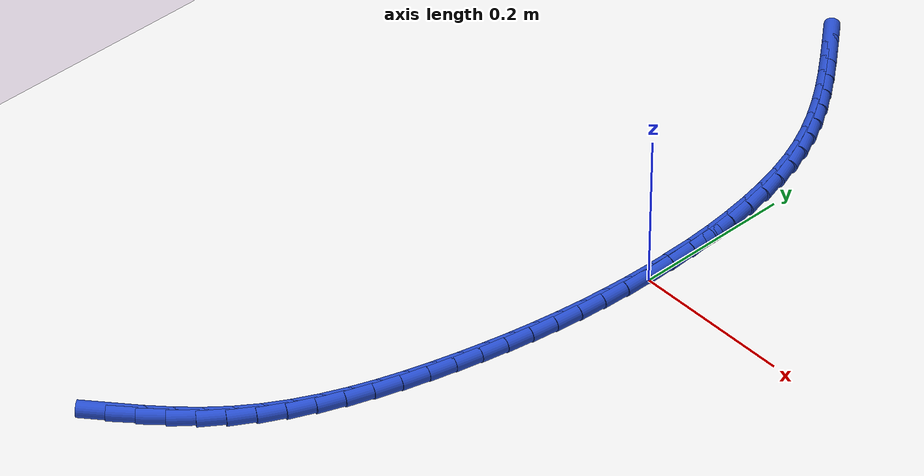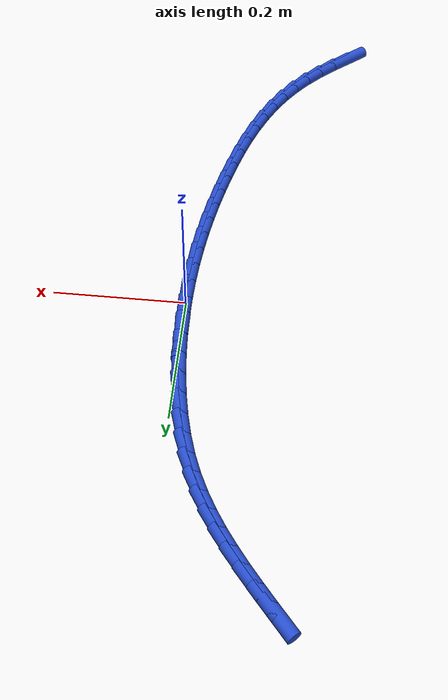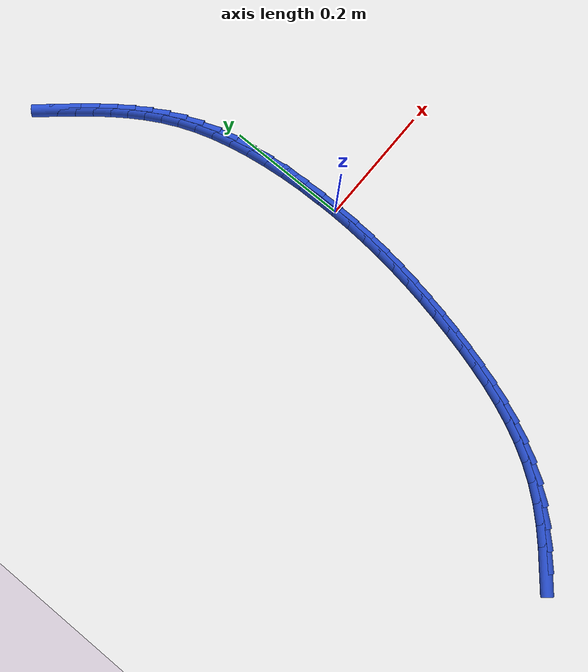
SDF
<sdf version="1.6">
 <world name="default">
  <model name="ground_plane">
   <static>1</static>
   <link name="link">
    <collision name="collision">
     <geometry><plane><normal>0 0 1</normal><size>100 100</size></plane></geometry>
     <surface><friction><ode><mu>100</mu><mu2>50</mu2></ode></friction></surface>
    </collision>
    <visual name="visual">
     <cast_shadows>0</cast_shadows>
     <geometry><plane><normal>0 0 1</normal><size>100 100</size></plane></geometry>
     <material>
      <script><uri>file://media/materials/scripts/gazebo.material</uri><name>Gazebo/WhiteGlow</name></script>
     </material>
    </visual>
   </link>
  </model>
  <model name="line">
   <link name="link_0">
    <pose>2.168404344971009e-17 -4.85722573273506e-17 0.01 0 1.57 1.5698805837654344</pose>
    <collision name="collision">
     <geometry><cylinder><radius>0.01</radius><length>0.08</length></cylinder></geometry>
    </collision>
    <visual name="visual">
     <material>
      <script><name>Gazebo/Blue</name><uri>file://media/materials/scripts/gazebo.material</uri></script>
     </material>
     <geometry><cylinder><radius>0.01</radius><length>0.08</length></cylinder></geometry>
    </visual>
   </link>
   <link name="link_1">
    <pose>3.1103723999863517e-05 0.03396554961901245 0.01 0 1.57 -1.5394128594266292</pose>
    <collision name="collision">
     <geometry><cylinder><radius>0.01</radius><length>0.08</length></cylinder></geometry>
    </collision>
    <visual name="visual">
     <material>
      <script><name>Gazebo/Blue</name><uri>file://media/materials/scripts/gazebo.material</uri></script>
     </material>
     <geometry><cylinder><radius>0.01</radius><length>0.08</length></cylinder></geometry>
    </visual>
   </link>
   <link name="link_2">
    <pose>-0.001041612647061923 0.06813526562558116 0.01 0 1.57 -1.50493062476425</pose>
    <collision name="collision">
     <geometry><cylinder><radius>0.01</radius><length>0.08</length></cylinder></geometry>
    </collision>
    <visual name="visual">
     <material>
      <script><name>Gazebo/Blue</name><uri>file://media/materials/scripts/gazebo.material</uri></script>
     </material>
     <geometry><cylinder><radius>0.01</radius><length>0.08</length></cylinder></geometry>
    </visual>
   </link>
   <link name="link_3">
    <pose>-0.003288826881137124 0.10220403791664233 0.01 0 1.57 -1.4674196419176873</pose>
    <collision name="collision">
     <geometry><cylinder><radius>0.01</radius><length>0.08</length></cylinder></geometry>
    </collision>
    <visual name="visual">
     <material>
      <script><name>Gazebo/Blue</name><uri>file://media/materials/scripts/gazebo.material</uri></script>
     </material>
     <geometry><cylinder><radius>0.01</radius><length>0.08</length></cylinder></geometry>
    </visual>
   </link>
   <link name="link_4">
    <pose>-0.006781216746177534 0.13586675638913231 0.01 0 1.57 -1.4259003814461089</pose>
    <collision name="collision">
     <geometry><cylinder><radius>0.01</radius><length>0.08</length></cylinder></geometry>
    </collision>
    <visual name="visual">
     <material>
      <script><name>Gazebo/Blue</name><uri>file://media/materials/scripts/gazebo.material</uri></script>
     </material>
     <geometry><cylinder><radius>0.01</radius><length>0.08</length></cylinder></geometry>
    </visual>
   </link>
   <link name="link_5">
    <pose>-0.011589460010134932 0.1688183109399874 0.01 0 1.57 -1.3791968167658442</pose>
    <collision name="collision">
     <geometry><cylinder><radius>0.01</radius><length>0.08</length></cylinder></geometry>
    </collision>
    <visual name="visual">
     <material>
      <script><name>Gazebo/Blue</name><uri>file://media/materials/scripts/gazebo.material</uri></script>
     </material>
     <geometry><cylinder><radius>0.01</radius><length>0.08</length></cylinder></geometry>
    </visual>
   </link>
   <link name="link_6">
    <pose>-0.017784234440961125 0.20075359146614397 0.01 0 1.57 -1.3258634944821102</pose>
    <collision name="collision">
     <geometry><cylinder><radius>0.01</radius><length>0.08</length></cylinder></geometry>
    </collision>
    <visual name="visual">
     <material>
      <script><name>Gazebo/Blue</name><uri>file://media/materials/scripts/gazebo.material</uri></script>
     </material>
     <geometry><cylinder><radius>0.01</radius><length>0.08</length></cylinder></geometry>
    </visual>
   </link>
   <link name="link_7">
    <pose>-0.025436217806607875 0.2313674878645382 0.01 0 1.57 -1.264103817456565</pose>
    <collision name="collision">
     <geometry><cylinder><radius>0.01</radius><length>0.08</length></cylinder></geometry>
    </collision>
    <visual name="visual">
     <material>
      <script><name>Gazebo/Blue</name><uri>file://media/materials/scripts/gazebo.material</uri></script>
     </material>
     <geometry><cylinder><radius>0.01</radius><length>0.08</length></cylinder></geometry>
    </visual>
   </link>
   <link name="link_8">
    <pose>-0.03461608350601679 0.2603549068060391 0.01 0 1.57 -1.1942190932518901</pose>
    <collision name="collision">
     <geometry><cylinder><radius>0.01</radius><length>0.08</length></cylinder></geometry>
    </collision>
    <visual name="visual">
     <material>
      <script><name>Gazebo/Blue</name><uri>file://media/materials/scripts/gazebo.material</uri></script>
     </material>
     <geometry><cylinder><radius>0.01</radius><length>0.08</length></cylinder></geometry>
    </visual>
   </link>
   <link name="link_9">
    <pose>-0.04536305266513509 0.28753150961506563 0.01 0 1.57 -1.1244701792396612</pose>
    <collision name="collision">
     <geometry><cylinder><radius>0.01</radius><length>0.08</length></cylinder></geometry>
    </collision>
    <visual name="visual">
     <material>
      <script><name>Gazebo/Blue</name><uri>file://media/materials/scripts/gazebo.material</uri></script>
     </material>
     <geometry><cylinder><radius>0.01</radius><length>0.08</length></cylinder></geometry>
    </visual>
   </link>
   <link name="link_10">
    <pose>-0.057609493409606825 0.31312319814251927 0.01 0 1.57 -1.059163996771727</pose>
    <collision name="collision">
     <geometry><cylinder><radius>0.01</radius><length>0.08</length></cylinder></geometry>
    </collision>
    <visual name="visual">
     <material>
      <script><name>Gazebo/Blue</name><uri>file://media/materials/scripts/gazebo.material</uri></script>
     </material>
     <geometry><cylinder><radius>0.01</radius><length>0.08</length></cylinder></geometry>
    </visual>
   </link>
   <link name="link_11">
    <pose>-0.07126510360305308 0.3374429121343683 0.01 0 1.57 -1.0007654764812122</pose>
    <collision name="collision">
     <geometry><cylinder><radius>0.01</radius><length>0.08</length></cylinder></geometry>
    </collision>
    <visual name="visual">
     <material>
      <script><name>Gazebo/Blue</name><uri>file://media/materials/scripts/gazebo.material</uri></script>
     </material>
     <geometry><cylinder><radius>0.01</radius><length>0.08</length></cylinder></geometry>
    </visual>
   </link>
   <link name="link_12">
    <pose>-0.08623958110909491 0.36080359133658046 0.01 0 1.57 -0.9511785535892167</pose>
    <collision name="collision">
     <geometry><cylinder><radius>0.01</radius><length>0.08</length></cylinder></geometry>
    </collision>
    <visual name="visual">
     <material>
      <script><name>Gazebo/Blue</name><uri>file://media/materials/scripts/gazebo.material</uri></script>
     </material>
     <geometry><cylinder><radius>0.01</radius><length>0.08</length></cylinder></geometry>
    </visual>
   </link>
   <link name="link_13">
    <pose>-0.10244262379135331 0.3835181754951235 0.01 0 1.57 -0.9116063459008434</pose>
    <collision name="collision">
     <geometry><cylinder><radius>0.01</radius><length>0.08</length></cylinder></geometry>
    </collision>
    <visual name="visual">
     <material>
      <script><name>Gazebo/Blue</name><uri>file://media/materials/scripts/gazebo.material</uri></script>
     </material>
     <geometry><cylinder><radius>0.01</radius><length>0.08</length></cylinder></geometry>
    </visual>
   </link>
   <link name="link_14">
    <pose>-0.11978392951344947 0.4058996043559655 0.01 0 1.57 -0.8825611799044851</pose>
    <collision name="collision">
     <geometry><cylinder><radius>0.01</radius><length>0.08</length></cylinder></geometry>
    </collision>
    <visual name="visual">
     <material>
      <script><name>Gazebo/Blue</name><uri>file://media/materials/scripts/gazebo.material</uri></script>
     </material>
     <geometry><cylinder><radius>0.01</radius><length>0.08</length></cylinder></geometry>
    </visual>
   </link>
   <link name="link_15">
    <pose>-0.13817319613900433 0.4282608176650743 0.01 0 1.57 -0.8639728229293671</pose>
    <collision name="collision">
     <geometry><cylinder><radius>0.01</radius><length>0.08</length></cylinder></geometry>
    </collision>
    <visual name="visual">
     <material>
      <script><name>Gazebo/Blue</name><uri>file://media/materials/scripts/gazebo.material</uri></script>
     </material>
     <geometry><cylinder><radius>0.01</radius><length>0.08</length></cylinder></geometry>
    </visual>
   </link>
   <link name="link_16">
    <pose>-0.15752012153163897 0.45091475516841756 0.01 0 1.57 -0.8553333232435137</pose>
    <collision name="collision">
     <geometry><cylinder><radius>0.01</radius><length>0.08</length></cylinder></geometry>
    </collision>
    <visual name="visual">
     <material>
      <script><name>Gazebo/Blue</name><uri>file://media/materials/scripts/gazebo.material</uri></script>
     </material>
     <geometry><cylinder><radius>0.01</radius><length>0.08</length></cylinder></geometry>
    </visual>
   </link>
   <link name="link_220">
    <pose>-0.22891999491344006 -0.5959348799087579 0.01 0 1.57 0.7057316346773732</pose>
    <collision name="collision">
     <geometry><cylinder><radius>0.01</radius><length>0.08</length></cylinder></geometry>
    </collision>
    <visual name="visual">
     <material>
      <script><name>Gazebo/Blue</name><uri>file://media/materials/scripts/gazebo.material</uri></script>
     </material>
     <geometry><cylinder><radius>0.01</radius><length>0.08</length></cylinder></geometry>
    </visual>
   </link>
   <link name="link_221">
    <pose>-0.20358117324975122 -0.574342809438624 0.01 0 1.57 0.7518768882422756</pose>
    <collision name="collision">
     <geometry><cylinder><radius>0.01</radius><length>0.08</length></cylinder></geometry>
    </collision>
    <visual name="visual">
     <material>
      <script><name>Gazebo/Blue</name><uri>file://media/materials/scripts/gazebo.material</uri></script>
     </material>
     <geometry><cylinder><radius>0.01</radius><length>0.08</length></cylinder></geometry>
    </visual>
   </link>
   <link name="link_222">
    <pose>-0.17944881893700473 -0.5517764424113082 0.01 0 1.57 0.8104426846640124</pose>
    <collision name="collision">
     <geometry><cylinder><radius>0.01</radius><length>0.08</length></cylinder></geometry>
    </collision>
    <visual name="visual">
     <material>
      <script><name>Gazebo/Blue</name><uri>file://media/materials/scripts/gazebo.material</uri></script>
     </material>
     <geometry><cylinder><radius>0.01</radius><length>0.08</length></cylinder></geometry>
    </visual>
   </link>
   <link name="link_223">
    <pose>-0.1568502487773731 -0.5280166053324963 0.01 0 1.57 0.8817017379801078</pose>
    <collision name="collision">
     <geometry><cylinder><radius>0.01</radius><length>0.08</length></cylinder></geometry>
    </collision>
    <visual name="visual">
     <material>
      <script><name>Gazebo/Blue</name><uri>file://media/materials/scripts/gazebo.material</uri></script>
     </material>
     <geometry><cylinder><radius>0.01</radius><length>0.08</length></cylinder></geometry>
    </visual>
   </link>
   <link name="link_224">
    <pose>-0.13611277957303086 -0.5028441247078765 0.01 0 1.57 0.9630118600257062</pose>
    <collision name="collision">
     <geometry><cylinder><radius>0.01</radius><length>0.08</length></cylinder></geometry>
    </collision>
    <visual name="visual">
     <material>
      <script><name>Gazebo/Blue</name><uri>file://media/materials/scripts/gazebo.material</uri></script>
     </material>
     <geometry><cylinder><radius>0.01</radius><length>0.08</length></cylinder></geometry>
    </visual>
   </link>
   <link name="link_225">
    <pose>-0.11750330731798815 -0.4760920080179745 0.01 0 1.57 1.0401919288252193</pose>
    <collision name="collision">
     <geometry><cylinder><radius>0.01</radius><length>0.08</length></cylinder></geometry>
    </collision>
    <visual name="visual">
     <material>
      <script><name>Gazebo/Blue</name><uri>file://media/materials/scripts/gazebo.material</uri></script>
     </material>
     <geometry><cylinder><radius>0.01</radius><length>0.08</length></cylinder></geometry>
    </visual>
   </link>
   <link name="link_226">
    <pose>-0.10095258845491799 -0.44788356156593284 0.01 0 1.57 1.1083213869897792</pose>
    <collision name="collision">
     <geometry><cylinder><radius>0.01</radius><length>0.08</length></cylinder></geometry>
    </collision>
    <visual name="visual">
     <material>
      <script><name>Gazebo/Blue</name><uri>file://media/materials/scripts/gazebo.material</uri></script>
     </material>
     <geometry><cylinder><radius>0.01</radius><length>0.08</length></cylinder></geometry>
    </visual>
   </link>
   <link name="link_227">
    <pose>-0.08627516637669805 -0.4184424562546378 0.01 0 1.57 1.167578900574522</pose>
    <collision name="collision">
     <geometry><cylinder><radius>0.01</radius><length>0.08</length></cylinder></geometry>
    </collision>
    <visual name="visual">
     <material>
      <script><name>Gazebo/Blue</name><uri>file://media/materials/scripts/gazebo.material</uri></script>
     </material>
     <geometry><cylinder><radius>0.01</radius><length>0.08</length></cylinder></geometry>
    </visual>
   </link>
   <link name="link_228">
    <pose>-0.073285473118268 -0.3879924591585753 0.01 0 1.57 1.2183738990047508</pose>
    <collision name="collision">
     <geometry><cylinder><radius>0.01</radius><length>0.08</length></cylinder></geometry>
    </collision>
    <visual name="visual">
     <material>
      <script><name>Gazebo/Blue</name><uri>file://media/materials/scripts/gazebo.material</uri></script>
     </material>
     <geometry><cylinder><radius>0.01</radius><length>0.08</length></cylinder></geometry>
    </visual>
   </link>
   <link name="link_229">
    <pose>-0.061797940714567436 -0.3567573373522311 0.01 0 1.57 1.2612056154904399</pose>
    <collision name="collision">
     <geometry><cylinder><radius>0.01</radius><length>0.08</length></cylinder></geometry>
    </collision>
    <visual name="visual">
     <material>
      <script><name>Gazebo/Blue</name><uri>file://media/materials/scripts/gazebo.material</uri></script>
     </material>
     <geometry><cylinder><radius>0.01</radius><length>0.08</length></cylinder></geometry>
    </visual>
   </link>
   <link name="link_230">
    <pose>-0.051627001200535774 -0.32496085791009044 0.01 0 1.57 1.2965652187888062</pose>
    <collision name="collision">
     <geometry><cylinder><radius>0.01</radius><length>0.08</length></cylinder></geometry>
    </collision>
    <visual name="visual">
     <material>
      <script><name>Gazebo/Blue</name><uri>file://media/materials/scripts/gazebo.material</uri></script>
     </material>
     <geometry><cylinder><radius>0.01</radius><length>0.08</length></cylinder></geometry>
    </visual>
   </link>
   <link name="link_231">
    <pose>-0.04258708661111316 -0.29282678790664074 0.01 0 1.57 1.3248698137025572</pose>
    <collision name="collision">
     <geometry><cylinder><radius>0.01</radius><length>0.08</length></cylinder></geometry>
    </collision>
    <visual name="visual">
     <material>
      <script><name>Gazebo/Blue</name><uri>file://media/materials/scripts/gazebo.material</uri></script>
     </material>
     <geometry><cylinder><radius>0.01</radius><length>0.08</length></cylinder></geometry>
    </visual>
   </link>
   <link name="link_232">
    <pose>-0.034492628981238935 -0.2605788944163671 0.01 0 1.57 1.3476262263256082</pose>
    <collision name="collision">
     <geometry><cylinder><radius>0.01</radius><length>0.08</length></cylinder></geometry>
    </collision>
    <visual name="visual">
     <material>
      <script><name>Gazebo/Blue</name><uri>file://media/materials/scripts/gazebo.material</uri></script>
     </material>
     <geometry><cylinder><radius>0.01</radius><length>0.08</length></cylinder></geometry>
    </visual>
   </link>
   <link name="link_233">
    <pose>-0.027189216099699532 -0.22839824031002656 0.01 0 1.57 1.3706133203036528</pose>
    <collision name="collision">
     <geometry><cylinder><radius>0.01</radius><length>0.08</length></cylinder></geometry>
    </collision>
    <visual name="visual">
     <material>
      <script><name>Gazebo/Blue</name><uri>file://media/materials/scripts/gazebo.material</uri></script>
     </material>
     <geometry><cylinder><radius>0.01</radius><length>0.08</length></cylinder></geometry>
    </visual>
   </link>
   <link name="link_234">
    <pose>-0.020669283893686576 -0.19626460837218504 0.01 0 1.57 1.395387824268736</pose>
    <collision name="collision">
     <geometry><cylinder><radius>0.01</radius><length>0.08</length></cylinder></geometry>
    </collision>
    <visual name="visual">
     <material>
      <script><name>Gazebo/Blue</name><uri>file://media/materials/scripts/gazebo.material</uri></script>
     </material>
     <geometry><cylinder><radius>0.01</radius><length>0.08</length></cylinder></geometry>
    </visual>
   </link>
   <link name="link_235">
    <pose>-0.014968493166854975 -0.1640985344200675 0.01 0 1.57 1.421776574683012</pose>
    <collision name="collision">
     <geometry><cylinder><radius>0.01</radius><length>0.08</length></cylinder></geometry>
    </collision>
    <visual name="visual">
     <material>
      <script><name>Gazebo/Blue</name><uri>file://media/materials/scripts/gazebo.material</uri></script>
     </material>
     <geometry><cylinder><radius>0.01</radius><length>0.08</length></cylinder></geometry>
    </visual>
   </link>
   <link name="link_236">
    <pose>-0.010122510727192802 -0.13182054604095003 0.01 0 1.57 1.449570952569702</pose>
    <collision name="collision">
     <geometry><cylinder><radius>0.01</radius><length>0.08</length></cylinder></geometry>
    </collision>
    <visual name="visual">
     <material>
      <script><name>Gazebo/Blue</name><uri>file://media/materials/scripts/gazebo.material</uri></script>
     </material>
     <geometry><cylinder><radius>0.01</radius><length>0.08</length></cylinder></geometry>
    </visual>
   </link>
   <link name="link_237">
    <pose>-0.006167003382688139 -0.09935117082210868 0.01 0 1.57 1.478531731708414</pose>
    <collision name="collision">
     <geometry><cylinder><radius>0.01</radius><length>0.08</length></cylinder></geometry>
    </collision>
    <visual name="visual">
     <material>
      <script><name>Gazebo/Blue</name><uri>file://media/materials/scripts/gazebo.material</uri></script>
     </material>
     <geometry><cylinder><radius>0.01</radius><length>0.08</length></cylinder></geometry>
    </visual>
   </link>
   <link name="link_238">
    <pose>-0.0031376379413289995 -0.06661093635081858 0.01 0 1.57 1.5083956882964675</pose>
    <collision name="collision">
     <geometry><cylinder><radius>0.01</radius><length>0.08</length></cylinder></geometry>
    </collision>
    <visual name="visual">
     <material>
      <script><name>Gazebo/Blue</name><uri>file://media/materials/scripts/gazebo.material</uri></script>
     </material>
     <geometry><cylinder><radius>0.01</radius><length>0.08</length></cylinder></geometry>
    </visual>
   </link>
   <link name="link_239">
    <pose>-0.0010700812111036216 -0.03352037021435736 0.01 0 1.57 1.5388838532581401</pose>
    <collision name="collision">
     <geometry><cylinder><radius>0.01</radius><length>0.08</length></cylinder></geometry>
    </collision>
    <visual name="visual">
     <material>
      <script><name>Gazebo/Blue</name><uri>file://media/materials/scripts/gazebo.material</uri></script>
     </material>
     <geometry><cylinder><radius>0.01</radius><length>0.08</length></cylinder></geometry>
    </visual>
   </link>
   <link name="link_240">
    <pose>6.5052130349130266e-18 -2.42861286636753e-16 0.01 0 1.57 1.569710835963746</pose>
    <collision name="collision">
     <geometry><cylinder><radius>0.01</radius><length>0.08</length></cylinder></geometry>
    </collision>
    <visual name="visual">
     <material>
      <script><name>Gazebo/Blue</name><uri>file://media/materials/scripts/gazebo.material</uri></script>
     </material>
     <geometry><cylinder><radius>0.01</radius><length>0.08</length></cylinder></geometry>
    </visual>
   </link>
   <link name="link_241">
    <pose>3.693888399380375e-05 0.03402964670497675 0.01 0 1.57 -1.5409981572071312</pose>
    <collision name="collision">
     <geometry><cylinder><radius>0.01</radius><length>0.08</length></cylinder></geometry>
    </collision>
    <visual name="visual">
     <material>
      <script><name>Gazebo/Blue</name><uri>file://media/materials/scripts/gazebo.material</uri></script>
     </material>
     <geometry><cylinder><radius>0.01</radius><length>0.08</length></cylinder></geometry>
    </visual>
   </link>
   <link name="link_242">
    <pose>-0.0009949313671103075 0.06864804231329763 0.01 0 1.57 -1.55630411872277</pose>
    <collision name="collision">
     <geometry><cylinder><radius>0.01</radius><length>0.08</length></cylinder></geometry>
    </collision>
    <visual name="visual">
     <material>
      <script><name>Gazebo/Blue</name><uri>file://media/materials/scripts/gazebo.material</uri></script>
     </material>
     <geometry><cylinder><radius>0.01</radius><length>0.08</length></cylinder></geometry>
    </visual>
   </link>
  </model>
 </world>
</sdf>
